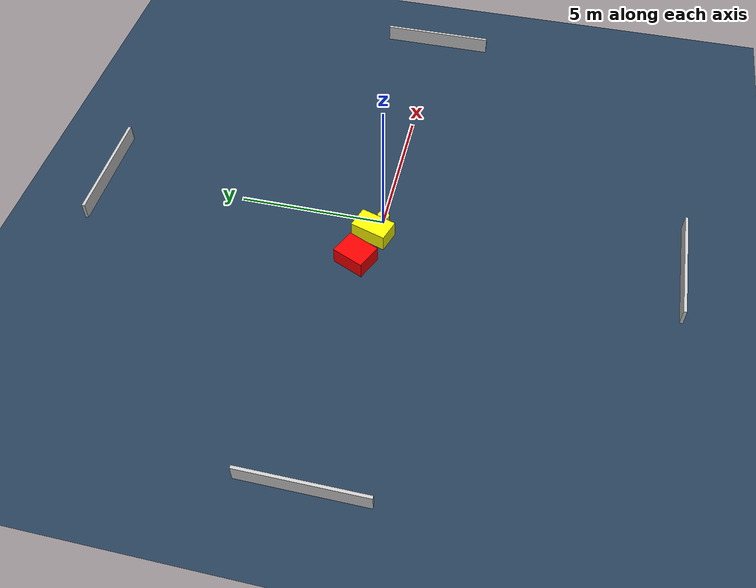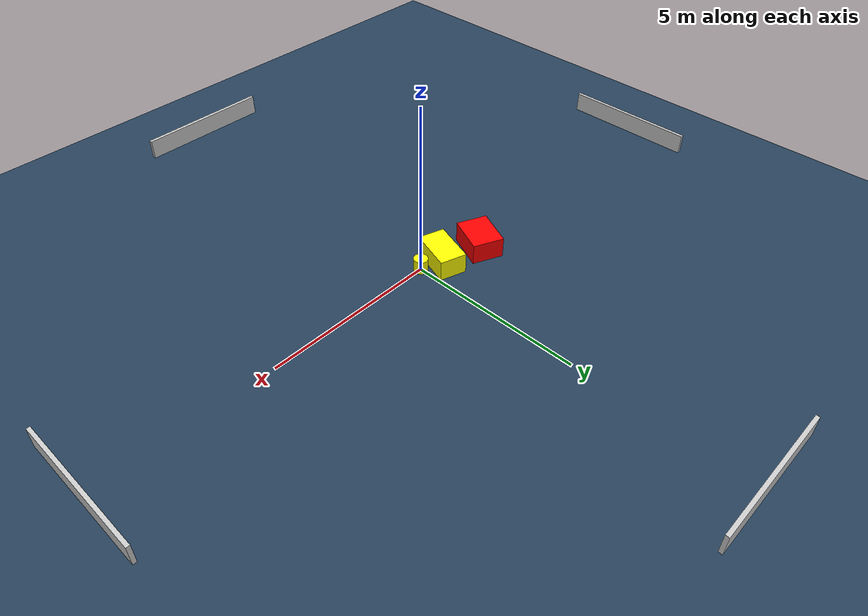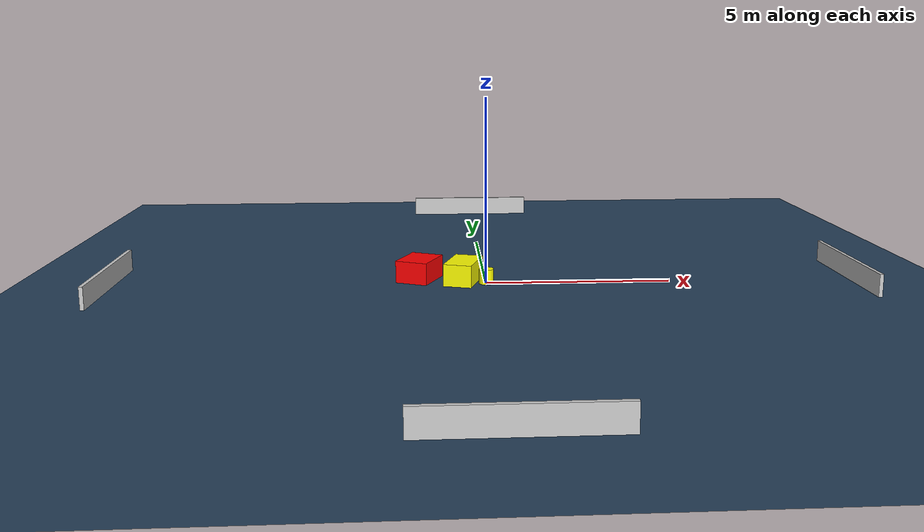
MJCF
<?xml version="1.0" ?>
<mujoco model="generated_environment">
  <option timestep="0.01" integrator="RK4" cone="elliptic"/>
  <default>
    <geom density="1"/>
  </default>
  <asset>
    <texture builtin="gradient" height="3072" name="skybox" rgb1="0.3 0.5 0.7" rgb2="0 0 0" type="skybox" width="512"/>
    <texture builtin="checker" height="300" name="groundplane" rgb1="0.2 0.3 0.4" rgb2="0.1 0.2 0.3" type="2d" width="300"/>
    <material name="groundplane" reflectance="0.2" texrepeat="5 5" texture="groundplane"/>
  </asset>
  <worldbody>
    <light dir="0 0 -1" directional="true" pos="0 0 1.5"/>
    <geom condim="3" friction="0.5 0.005 0.001" material="groundplane" name="floor" pos="0 0 0" size="0 0 0.05" type="plane"/>
    <body name="walls">
      <geom name="wall_1" condim="4" pos="-10.0 0.0 0.3" rgba="0.800000011920929 0.800000011920929 0.800000011920929 1.0" size="0.05 2.0 0.3" type="box"/>
      <geom name="wall_2" condim="4" pos="10.0 0.0 0.3" rgba="0.800000011920929 0.800000011920929 0.800000011920929 1.0" size="0.05 2.0 0.3" type="box"/>
      <geom name="wall_3" condim="4" pos="0.0 -10.0 0.3" rgba="0.800000011920929 0.800000011920929 0.800000011920929 1.0" size="2.0 0.05 0.3" type="box"/>
      <geom name="wall_4" condim="4" pos="0.0 10.0 0.3" rgba="0.800000011920929 0.800000011920929 0.800000011920929 1.0" size="2.0 0.05 0.3" type="box"/>
    </body>
    <body name="robot">
      <joint name="joint_x" type="slide" pos="0 0 0" axis="1 0 0"/>
      <joint name="joint_y" type="slide" pos="0 0 0" axis="0 1 0"/>
      <geom name="robot" type="cylinder" pos="0.0 0.0 0.2" size="0.2 0.2 0.0" mass="5.0" friction="1.0 0.005 0.0001" condim="4" rgba="1.0 1.0 0.0 1.0"/>
    </body>
    <body name="obstacle_1_movable">
      <geom name="obstacle_1_movable" condim="4" pos="-0.6079658257655295 0.21074031554985953 0.3" euler="0 0 162.3061145863962" friction="0.0 0.005 0.001" rgba="1.0 1.0 0.0 1.0" size="0.3843045652969006 0.6200772912896124 0.3" type="box" mass="0.1"/>
      <joint type="free"/>
    </body>
    <body name="obstacle_2_static">
      <geom name="obstacle_2_static" condim="4" pos="-1.8033887135300093 0.5228585815816696 0.3" euler="0 0 246.12893636587432" friction="0.0 0.005 0.001" rgba="1.0 0.0 0.0 1.0" size="0.5600283158909336 0.44877445923879206 0.3" type="box"/>
    </body>
  </worldbody>
  <actuator>
    <motor name="actuator_x" joint="joint_x" gear="1" ctrlrange="-1 1"/>
    <motor name="actuator_y" joint="joint_y" gear="1" ctrlrange="-1 1"/>
  </actuator>
</mujoco>
